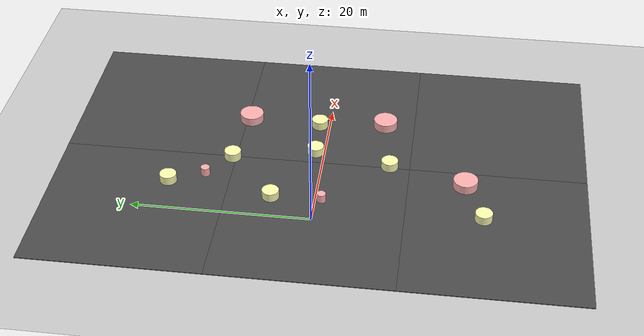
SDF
<sdf version="1.6">
 <world name="default">
  <model name="ground_plane">
   <static>1</static>
   <link name="link">
    <collision name="collision">
     <geometry><plane><normal>0 0 1</normal><size>100 100</size></plane></geometry>
     <surface><friction><ode><mu>100</mu><mu2>50</mu2></ode></friction></surface>
    </collision>
    <visual name="visual">
     <cast_shadows>0</cast_shadows>
     <geometry><plane><normal>0 0 1</normal><size>100 100</size></plane></geometry>
     <material>
      <script><uri>file://media/materials/scripts/gazebo.material</uri><name>Gazebo/Grey</name></script>
     </material>
    </visual>
   </link>
  </model>
  <model name="asphalt_plane">
   <static>1</static>
   <link name="link">
    <collision name="collision"><geometry><box><size>20 20 0.1</size></box></geometry></collision>
    <visual name="visual">
     <cast_shadows>0</cast_shadows>
     <geometry><box><size>20 20 0.1</size></box></geometry>
     <material>
      <script>
       <uri>model://asphalt_plane/materials/scripts</uri>
       <uri>model://asphalt_plane/materials/textures</uri>
       <name>vrc/asphalt</name>
      </script>
     </material>
    </visual>
   </link>
  </model>
  <model name="asphalt_plane_clone_clone">
   <static>1</static>
   <link name="link">
    <collision name="collision"><geometry><box><size>20 20 0.1</size></box></geometry></collision>
    <visual name="visual">
     <cast_shadows>0</cast_shadows>
     <geometry><box><size>20 20 0.1</size></box></geometry>
     <material>
      <script>
       <uri>model://asphalt_plane/materials/scripts</uri>
       <uri>model://asphalt_plane/materials/textures</uri>
       <name>vrc/asphalt</name>
      </script>
     </material>
    </visual>
   </link>
   <pose>20 20 0 0 -0 0</pose>
  </model>
  <model name="asphalt_plane_clone_clone_clone">
   <static>1</static>
   <link name="link">
    <collision name="collision"><geometry><box><size>20 20 0.1</size></box></geometry></collision>
    <visual name="visual">
     <cast_shadows>0</cast_shadows>
     <geometry><box><size>20 20 0.1</size></box></geometry>
     <material>
      <script>
       <uri>model://asphalt_plane/materials/scripts</uri>
       <uri>model://asphalt_plane/materials/textures</uri>
       <name>vrc/asphalt</name>
      </script>
     </material>
    </visual>
   </link>
   <pose>0 20 0 0 -0 0</pose>
  </model>
  <model name="asphalt_plane_clone_clone_clone_1">
   <static>1</static>
   <link name="link">
    <collision name="collision"><geometry><box><size>20 20 0.1</size></box></geometry></collision>
    <visual name="visual">
     <cast_shadows>0</cast_shadows>
     <geometry><box><size>20 20 0.1</size></box></geometry>
     <material>
      <script>
       <uri>model://asphalt_plane/materials/scripts</uri>
       <uri>model://asphalt_plane/materials/textures</uri>
       <name>vrc/asphalt</name>
      </script>
     </material>
    </visual>
   </link>
   <pose>20 0 0 0 -0 0</pose>
  </model>
  <model name="asphalt_plane_clone_clone_clone_2">
   <static>1</static>
   <link name="link">
    <collision name="collision"><geometry><box><size>20 20 0.1</size></box></geometry></collision>
    <visual name="visual">
     <cast_shadows>0</cast_shadows>
     <geometry><box><size>20 20 0.1</size></box></geometry>
     <material>
      <script>
       <uri>model://asphalt_plane/materials/scripts</uri>
       <uri>model://asphalt_plane/materials/textures</uri>
       <name>vrc/asphalt</name>
      </script>
     </material>
    </visual>
   </link>
   <pose>20 -20 0 0 -0 0</pose>
  </model>
  <model name="asphalt_plane_clone_clone_clone_3">
   <static>1</static>
   <link name="link">
    <collision name="collision"><geometry><box><size>20 20 0.1</size></box></geometry></collision>
    <visual name="visual">
     <cast_shadows>0</cast_shadows>
     <geometry><box><size>20 20 0.1</size></box></geometry>
     <material>
      <script>
       <uri>model://asphalt_plane/materials/scripts</uri>
       <uri>model://asphalt_plane/materials/textures</uri>
       <name>vrc/asphalt</name>
      </script>
     </material>
    </visual>
   </link>
   <pose>0 -20 0 0 -0 0</pose>
  </model>
  <model name="LandmarksColoured_1">
   <link name="link_4_clone_0_clone_0">
    <pose>18.101 -6.65934 0 0 -0 0</pose>
    <inertial>
     <mass>7.6137</mass>
     <inertia><ixx>4.2575</ixx><ixy>0</ixy><ixz>0</ixz><iyy>4.2575</iyy><iyz>0</iyz><izz>7.24605</izz></inertia>
    </inertial>
    <visual name="visual">
     <geometry><cylinder><radius>1.37965</radius><length>1</length></cylinder></geometry>
     <material>
      <lighting>1</lighting>
      <script><uri>file://media/materials/scripts/gazebo.material</uri><name>Gazebo/Grey</name></script>
      <ambient>1 0.3 0.3 1</ambient>
      <diffuse>1 0.7 0.7 1</diffuse>
      <specular>1 0.01 0.01 1</specular>
      <emissive>1 0 0 1</emissive>
      <shader type="vertex"><normal_map>__default__</normal_map></shader>
     </material>
    </visual>
    <collision name="collision">
     <geometry><cylinder><radius>1.37965</radius><length>1</length></cylinder></geometry>
     <surface>
      <friction>
       <ode><mu>1</mu><mu2>1</mu2><fdir1>0 0 0</fdir1><slip1>0</slip1><slip2>0</slip2></ode>
       <torsional>
        <coefficient>1</coefficient>
        <patch_radius>0</patch_radius>
        <surface_radius>0</surface_radius>
        <use_patch_radius>1</use_patch_radius>
        <ode><slip>0</slip></ode>
       </torsional>
      </friction>
      <bounce><restitution_coefficient>0</restitution_coefficient><threshold>1e+06</threshold></bounce>
      <contact>
       <collide_without_contact>0</collide_without_contact>
       <collide_without_contact_bitmask>1</collide_without_contact_bitmask>
       <collide_bitmask>1</collide_bitmask>
       <ode>
        <soft_cfm>0</soft_cfm>
        <soft_erp>0.2</soft_erp>
        <kp>1e+13</kp>
        <kd>1</kd>
        <max_vel>0.01</max_vel>
        <min_depth>0</min_depth>
       </ode>
       <bullet>
        <split_impulse>1</split_impulse>
        <split_impulse_penetration_threshold>-0.01</split_impulse_penetration_threshold>
        <soft_cfm>0</soft_cfm>
        <soft_erp>0.2</soft_erp>
        <kp>1e+13</kp>
        <kd>1</kd>
       </bullet>
      </contact>
     </surface>
    </collision>
   </link>
   <link name="link_4_clone_0_clone_1">
    <pose>17.6574 9.38126 0 0 -0 0</pose>
    <inertial>
     <mass>7.6137</mass>
     <inertia><ixx>4.2575</ixx><ixy>0</ixy><ixz>0</ixz><iyy>4.2575</iyy><iyz>0</iyz><izz>7.24605</izz></inertia>
    </inertial>
    <visual name="visual">
     <geometry><cylinder><radius>1.37965</radius><length>1</length></cylinder></geometry>
     <material>
      <lighting>1</lighting>
      <script><uri>file://media/materials/scripts/gazebo.material</uri><name>Gazebo/Grey</name></script>
      <ambient>1 0.3 0.3 1</ambient>
      <diffuse>1 0.7 0.7 1</diffuse>
      <specular>1 0.01 0.01 1</specular>
      <emissive>1 0 0 1</emissive>
      <shader type="vertex"><normal_map>__default__</normal_map></shader>
     </material>
    </visual>
    <collision name="collision">
     <geometry><cylinder><radius>1.37965</radius><length>1</length></cylinder></geometry>
     <surface>
      <friction>
       <ode><mu>1</mu><mu2>1</mu2><fdir1>0 0 0</fdir1><slip1>0</slip1><slip2>0</slip2></ode>
       <torsional>
        <coefficient>1</coefficient>
        <patch_radius>0</patch_radius>
        <surface_radius>0</surface_radius>
        <use_patch_radius>1</use_patch_radius>
        <ode><slip>0</slip></ode>
       </torsional>
      </friction>
      <bounce><restitution_coefficient>0</restitution_coefficient><threshold>1e+06</threshold></bounce>
      <contact>
       <collide_without_contact>0</collide_without_contact>
       <collide_without_contact_bitmask>1</collide_without_contact_bitmask>
       <collide_bitmask>1</collide_bitmask>
       <ode>
        <soft_cfm>0</soft_cfm>
        <soft_erp>0.2</soft_erp>
        <kp>1e+13</kp>
        <kd>1</kd>
        <max_vel>0.01</max_vel>
        <min_depth>0</min_depth>
       </ode>
       <bullet>
        <split_impulse>1</split_impulse>
        <split_impulse_penetration_threshold>-0.01</split_impulse_penetration_threshold>
        <soft_cfm>0</soft_cfm>
        <soft_erp>0.2</soft_erp>
        <kp>1e+13</kp>
        <kd>1</kd>
       </bullet>
      </contact>
     </surface>
    </collision>
   </link>
   <link name="link_4_clone_0_clone_clone_0">
    <pose>7.70314 -16.4099 0 0 -0 0</pose>
    <inertial>
     <mass>7.6137</mass>
     <inertia><ixx>4.2575</ixx><ixy>0</ixy><ixz>0</ixz><iyy>4.2575</iyy><iyz>0</iyz><izz>7.24605</izz></inertia>
    </inertial>
    <visual name="visual">
     <geometry><cylinder><radius>1.37965</radius><length>1</length></cylinder></geometry>
     <material>
      <lighting>1</lighting>
      <script><uri>file://media/materials/scripts/gazebo.material</uri><name>Gazebo/Grey</name></script>
      <ambient>1 0.3 0.3 1</ambient>
      <diffuse>1 0.7 0.7 1</diffuse>
      <specular>1 0.01 0.01 1</specular>
      <emissive>1 0 0 1</emissive>
      <shader type="vertex"><normal_map>__default__</normal_map></shader>
     </material>
    </visual>
    <collision name="collision">
     <geometry><cylinder><radius>1.37965</radius><length>1</length></cylinder></geometry>
     <surface>
      <friction>
       <ode><mu>1</mu><mu2>1</mu2><fdir1>0 0 0</fdir1><slip1>0</slip1><slip2>0</slip2></ode>
       <torsional>
        <coefficient>1</coefficient>
        <patch_radius>0</patch_radius>
        <surface_radius>0</surface_radius>
        <use_patch_radius>1</use_patch_radius>
        <ode><slip>0</slip></ode>
       </torsional>
      </friction>
      <bounce><restitution_coefficient>0</restitution_coefficient><threshold>1e+06</threshold></bounce>
      <contact>
       <collide_without_contact>0</collide_without_contact>
       <collide_without_contact_bitmask>1</collide_without_contact_bitmask>
       <collide_bitmask>1</collide_bitmask>
       <ode>
        <soft_cfm>0</soft_cfm>
        <soft_erp>0.2</soft_erp>
        <kp>1e+13</kp>
        <kd>1</kd>
        <max_vel>0.01</max_vel>
        <min_depth>0</min_depth>
       </ode>
       <bullet>
        <split_impulse>1</split_impulse>
        <split_impulse_penetration_threshold>-0.01</split_impulse_penetration_threshold>
        <soft_cfm>0</soft_cfm>
        <soft_erp>0.2</soft_erp>
        <kp>1e+13</kp>
        <kd>1</kd>
       </bullet>
      </contact>
     </surface>
    </collision>
   </link>
   <link name="link_4_clone_2">
    <pose>3.40156 -0.6744 1e-05 0 -0 0</pose>
    <inertial>
     <mass>1</mass>
     <inertia><ixx>0.145833</ixx><ixy>0</ixy><ixz>0</ixz><iyy>0.145833</iyy><iyz>0</iyz><izz>0.125</izz></inertia>
    </inertial>
    <visual name="visual">
     <geometry><cylinder><radius>0.5</radius><length>1</length></cylinder></geometry>
     <material>
      <lighting>1</lighting>
      <script><uri>file://media/materials/scripts/gazebo.material</uri><name>Gazebo/Grey</name></script>
      <ambient>1 0.3 0.3 1</ambient>
      <diffuse>1 0.7 0.7 1</diffuse>
      <specular>1 0.01 0.01 1</specular>
      <emissive>1 0 0 1</emissive>
      <shader type="vertex"><normal_map>__default__</normal_map></shader>
     </material>
    </visual>
    <collision name="collision">
     <geometry><cylinder><radius>0.5</radius><length>1</length></cylinder></geometry>
     <surface>
      <friction>
       <ode><mu>1</mu><mu2>1</mu2><fdir1>0 0 0</fdir1><slip1>0</slip1><slip2>0</slip2></ode>
       <torsional>
        <coefficient>1</coefficient>
        <patch_radius>0</patch_radius>
        <surface_radius>0</surface_radius>
        <use_patch_radius>1</use_patch_radius>
        <ode><slip>0</slip></ode>
       </torsional>
      </friction>
      <bounce><restitution_coefficient>0</restitution_coefficient><threshold>1e+06</threshold></bounce>
      <contact>
       <collide_without_contact>0</collide_without_contact>
       <collide_without_contact_bitmask>1</collide_without_contact_bitmask>
       <collide_bitmask>1</collide_bitmask>
       <ode>
        <soft_cfm>0</soft_cfm>
        <soft_erp>0.2</soft_erp>
        <kp>1e+13</kp>
        <kd>1</kd>
        <max_vel>0.01</max_vel>
        <min_depth>0</min_depth>
       </ode>
       <bullet>
        <split_impulse>1</split_impulse>
        <split_impulse_penetration_threshold>-0.01</split_impulse_penetration_threshold>
        <soft_cfm>0</soft_cfm>
        <soft_erp>0.2</soft_erp>
        <kp>1e+13</kp>
        <kd>1</kd>
       </bullet>
      </contact>
     </surface>
    </collision>
   </link>
   <link name="link_4_clone_3">
    <pose>6.57429 12.9229 1.5e-05 0 -0 0</pose>
    <inertial>
     <mass>1</mass>
     <inertia><ixx>0.145833</ixx><ixy>0</ixy><ixz>0</ixz><iyy>0.145833</iyy><iyz>0</iyz><izz>0.125</izz></inertia>
    </inertial>
    <visual name="visual">
     <geometry><cylinder><radius>0.5</radius><length>1</length></cylinder></geometry>
     <material>
      <lighting>1</lighting>
      <script><uri>file://media/materials/scripts/gazebo.material</uri><name>Gazebo/Grey</name></script>
      <ambient>1 0.3 0.3 1</ambient>
      <diffuse>1 0.7 0.7 1</diffuse>
      <specular>1 0.01 0.01 1</specular>
      <emissive>1 0 0 1</emissive>
      <shader type="vertex"><normal_map>__default__</normal_map></shader>
     </material>
    </visual>
    <collision name="collision">
     <geometry><cylinder><radius>0.5</radius><length>1</length></cylinder></geometry>
     <surface>
      <friction>
       <ode><mu>1</mu><mu2>1</mu2><fdir1>0 0 0</fdir1><slip1>0</slip1><slip2>0</slip2></ode>
       <torsional>
        <coefficient>1</coefficient>
        <patch_radius>0</patch_radius>
        <surface_radius>0</surface_radius>
        <use_patch_radius>1</use_patch_radius>
        <ode><slip>0</slip></ode>
       </torsional>
      </friction>
      <bounce><restitution_coefficient>0</restitution_coefficient><threshold>1e+06</threshold></bounce>
      <contact>
       <collide_without_contact>0</collide_without_contact>
       <collide_without_contact_bitmask>1</collide_without_contact_bitmask>
       <collide_bitmask>1</collide_bitmask>
       <ode>
        <soft_cfm>0</soft_cfm>
        <soft_erp>0.2</soft_erp>
        <kp>1e+13</kp>
        <kd>1</kd>
        <max_vel>0.01</max_vel>
        <min_depth>0</min_depth>
       </ode>
       <bullet>
        <split_impulse>1</split_impulse>
        <split_impulse_penetration_threshold>-0.01</split_impulse_penetration_threshold>
        <soft_cfm>0</soft_cfm>
        <soft_erp>0.2</soft_erp>
        <kp>1e+13</kp>
        <kd>1</kd>
       </bullet>
      </contact>
     </surface>
    </collision>
   </link>
   <link name="link_4_clone_clone">
    <pose>10.2323 -7.72786 0 0 -0 0</pose>
    <inertial>
     <mass>3.64615</mass>
     <inertia><ixx>1.13475</ixx><ixy>0</ixy><ixz>0</ixz><iyy>1.13475</iyy><iyz>0</iyz><izz>1.6618</izz></inertia>
    </inertial>
    <visual name="visual_1">
     <geometry><cylinder><radius>0.954744</radius><length>1</length></cylinder></geometry>
     <material>
      <lighting>1</lighting>
      <script><uri>file://media/materials/scripts/gazebo.material</uri><name>Gazebo/Grey</name></script>
      <ambient>1 1 0.3 1</ambient>
      <diffuse>1 1 0.7 1</diffuse>
      <specular>1 1 0.01 1</specular>
      <emissive>1 0 0 1</emissive>
      <shader type="vertex"><normal_map>__default__</normal_map></shader>
     </material>
    </visual>
    <visual name="visual">
     <geometry><cylinder><radius>0.954744</radius><length>1</length></cylinder></geometry>
     <material>
      <lighting>1</lighting>
      <script><uri>file://media/materials/scripts/gazebo.material</uri><name>Gazebo/Grey</name></script>
      <ambient>1 1 0.3 1</ambient>
      <diffuse>1 1 0.7 1</diffuse>
      <specular>1 1 0.01 1</specular>
      <emissive>1 1 0 1</emissive>
      <shader type="vertex"><normal_map>__default__</normal_map></shader>
     </material>
    </visual>
    <collision name="collision">
     <geometry><cylinder><radius>0.954744</radius><length>1</length></cylinder></geometry>
     <surface>
      <friction>
       <ode><mu>1</mu><mu2>1</mu2><fdir1>0 0 0</fdir1><slip1>0</slip1><slip2>0</slip2></ode>
       <torsional>
        <coefficient>1</coefficient>
        <patch_radius>0</patch_radius>
        <surface_radius>0</surface_radius>
        <use_patch_radius>1</use_patch_radius>
        <ode><slip>0</slip></ode>
       </torsional>
      </friction>
      <bounce><restitution_coefficient>0</restitution_coefficient><threshold>1e+06</threshold></bounce>
      <contact>
       <collide_without_contact>0</collide_without_contact>
       <collide_without_contact_bitmask>1</collide_without_contact_bitmask>
       <collide_bitmask>1</collide_bitmask>
       <ode>
        <soft_cfm>0</soft_cfm>
        <soft_erp>0.2</soft_erp>
        <kp>1e+13</kp>
        <kd>1</kd>
        <max_vel>0.01</max_vel>
        <min_depth>0</min_depth>
       </ode>
       <bullet>
        <split_impulse>1</split_impulse>
        <split_impulse_penetration_threshold>-0.01</split_impulse_penetration_threshold>
        <soft_cfm>0</soft_cfm>
        <soft_erp>0.2</soft_erp>
        <kp>1e+13</kp>
        <kd>1</kd>
       </bullet>
      </contact>
     </surface>
    </collision>
   </link>
   <link name="link_4_clone_clone_clone_0">
    <pose>9.99975 10.3839 0 0 -0 0</pose>
    <inertial>
     <mass>3.64615</mass>
     <inertia><ixx>1.13475</ixx><ixy>0</ixy><ixz>0</ixz><iyy>1.13475</iyy><iyz>0</iyz><izz>1.6618</izz></inertia>
    </inertial>
    <visual name="visual">
     <geometry><cylinder><radius>0.954744</radius><length>1</length></cylinder></geometry>
     <material>
      <lighting>1</lighting>
      <script><uri>file://media/materials/scripts/gazebo.material</uri><name>Gazebo/Grey</name></script>
      <ambient>1 1 0.3 1</ambient>
      <diffuse>1 1 0.7 1</diffuse>
      <specular>1 1 0.01 1</specular>
      <emissive>1 1 0 1</emissive>
      <shader type="vertex"><normal_map>__default__</normal_map></shader>
     </material>
    </visual>
    <visual name="visual_1">
     <geometry><cylinder><radius>0.954744</radius><length>1</length></cylinder></geometry>
     <material>
      <lighting>1</lighting>
      <script><uri>file://media/materials/scripts/gazebo.material</uri><name>Gazebo/Grey</name></script>
      <ambient>1 1 0.3 1</ambient>
      <diffuse>1 1 0.7 1</diffuse>
      <specular>1 1 0.01 1</specular>
      <emissive>1 0 0 1</emissive>
      <shader type="vertex"><normal_map>__default__</normal_map></shader>
     </material>
    </visual>
    <collision name="collision">
     <geometry><cylinder><radius>0.954744</radius><length>1</length></cylinder></geometry>
     <surface>
      <friction>
       <ode><mu>1</mu><mu2>1</mu2><fdir1>0 0 0</fdir1><slip1>0</slip1><slip2>0</slip2></ode>
       <torsional>
        <coefficient>1</coefficient>
        <patch_radius>0</patch_radius>
        <surface_radius>0</surface_radius>
        <use_patch_radius>1</use_patch_radius>
        <ode><slip>0</slip></ode>
       </torsional>
      </friction>
      <bounce><restitution_coefficient>0</restitution_coefficient><threshold>1e+06</threshold></bounce>
      <contact>
       <collide_without_contact>0</collide_without_contact>
       <collide_without_contact_bitmask>1</collide_without_contact_bitmask>
       <collide_bitmask>1</collide_bitmask>
       <ode>
        <soft_cfm>0</soft_cfm>
        <soft_erp>0.2</soft_erp>
        <kp>1e+13</kp>
        <kd>1</kd>
        <max_vel>0.01</max_vel>
        <min_depth>0</min_depth>
       </ode>
       <bullet>
        <split_impulse>1</split_impulse>
        <split_impulse_penetration_threshold>-0.01</split_impulse_penetration_threshold>
        <soft_cfm>0</soft_cfm>
        <soft_erp>0.2</soft_erp>
        <kp>1e+13</kp>
        <kd>1</kd>
       </bullet>
      </contact>
     </surface>
    </collision>
   </link>
   <link name="link_4_clone_clone_clone_1_clone">
    <pose>4.96725 16.8704 -0 0 -0 0</pose>
    <inertial>
     <mass>3.64615</mass>
     <inertia><ixx>1.13475</ixx><ixy>0</ixy><ixz>0</ixz><iyy>1.13475</iyy><iyz>0</iyz><izz>1.6618</izz></inertia>
    </inertial>
    <visual name="visual">
     <geometry><cylinder><radius>0.954744</radius><length>1</length></cylinder></geometry>
     <material>
      <lighting>1</lighting>
      <script><uri>file://media/materials/scripts/gazebo.material</uri><name>Gazebo/Grey</name></script>
      <ambient>1 1 0.3 1</ambient>
      <diffuse>1 1 0.7 1</diffuse>
      <specular>1 1 0.01 1</specular>
      <emissive>1 1 0 1</emissive>
      <shader type="vertex"><normal_map>__default__</normal_map></shader>
     </material>
    </visual>
    <visual name="visual_1">
     <geometry><cylinder><radius>0.954744</radius><length>1</length></cylinder></geometry>
     <material>
      <lighting>1</lighting>
      <script><uri>file://media/materials/scripts/gazebo.material</uri><name>Gazebo/Grey</name></script>
      <ambient>1 1 0.3 1</ambient>
      <diffuse>1 1 0.7 1</diffuse>
      <specular>1 1 0.01 1</specular>
      <emissive>1 0 0 1</emissive>
      <shader type="vertex"><normal_map>__default__</normal_map></shader>
     </material>
    </visual>
    <collision name="collision">
     <geometry><cylinder><radius>0.954744</radius><length>1</length></cylinder></geometry>
     <surface>
      <friction>
       <ode><mu>1</mu><mu2>1</mu2><fdir1>0 0 0</fdir1><slip1>0</slip1><slip2>0</slip2></ode>
       <torsional>
        <coefficient>1</coefficient>
        <patch_radius>0</patch_radius>
        <surface_radius>0</surface_radius>
        <use_patch_radius>1</use_patch_radius>
        <ode><slip>0</slip></ode>
       </torsional>
      </friction>
      <bounce><restitution_coefficient>0</restitution_coefficient><threshold>1e+06</threshold></bounce>
      <contact>
       <collide_without_contact>0</collide_without_contact>
       <collide_without_contact_bitmask>1</collide_without_contact_bitmask>
       <collide_bitmask>1</collide_bitmask>
       <ode>
        <soft_cfm>0</soft_cfm>
        <soft_erp>0.2</soft_erp>
        <kp>1e+13</kp>
        <kd>1</kd>
        <max_vel>0.01</max_vel>
        <min_depth>0</min_depth>
       </ode>
       <bullet>
        <split_impulse>1</split_impulse>
        <split_impulse_penetration_threshold>-0.01</split_impulse_penetration_threshold>
        <soft_cfm>0</soft_cfm>
        <soft_erp>0.2</soft_erp>
        <kp>1e+13</kp>
        <kd>1</kd>
       </bullet>
      </contact>
     </surface>
    </collision>
   </link>
   <link name="link_4_clone_clone_clone_1_clone_0">
    <pose>17.274 1.11495 0 0 -0 0</pose>
    <inertial>
     <mass>3.64615</mass>
     <inertia><ixx>1.13475</ixx><ixy>0</ixy><ixz>0</ixz><iyy>1.13475</iyy><iyz>0</iyz><izz>1.6618</izz></inertia>
    </inertial>
    <visual name="visual">
     <geometry><cylinder><radius>0.954744</radius><length>1</length></cylinder></geometry>
     <material>
      <lighting>1</lighting>
      <script><uri>file://media/materials/scripts/gazebo.material</uri><name>Gazebo/Grey</name></script>
      <ambient>1 1 0.3 1</ambient>
      <diffuse>1 1 0.7 1</diffuse>
      <specular>1 1 0.01 1</specular>
      <emissive>1 1 0 1</emissive>
      <shader type="vertex"><normal_map>__default__</normal_map></shader>
     </material>
    </visual>
    <visual name="visual_1">
     <geometry><cylinder><radius>0.954744</radius><length>1</length></cylinder></geometry>
     <material>
      <lighting>1</lighting>
      <script><uri>file://media/materials/scripts/gazebo.material</uri><name>Gazebo/Grey</name></script>
      <ambient>1 1 0.3 1</ambient>
      <diffuse>1 1 0.7 1</diffuse>
      <specular>1 1 0.01 1</specular>
      <emissive>1 0 0 1</emissive>
      <shader type="vertex"><normal_map>__default__</normal_map></shader>
     </material>
    </visual>
    <collision name="collision">
     <geometry><cylinder><radius>0.954744</radius><length>1</length></cylinder></geometry>
     <surface>
      <friction>
       <ode><mu>1</mu><mu2>1</mu2><fdir1>0 0 0</fdir1><slip1>0</slip1><slip2>0</slip2></ode>
       <torsional>
        <coefficient>1</coefficient>
        <patch_radius>0</patch_radius>
        <surface_radius>0</surface_radius>
        <use_patch_radius>1</use_patch_radius>
        <ode><slip>0</slip></ode>
       </torsional>
      </friction>
      <bounce><restitution_coefficient>0</restitution_coefficient><threshold>1e+06</threshold></bounce>
      <contact>
       <collide_without_contact>0</collide_without_contact>
       <collide_without_contact_bitmask>1</collide_without_contact_bitmask>
       <collide_bitmask>1</collide_bitmask>
       <ode>
        <soft_cfm>0</soft_cfm>
        <soft_erp>0.2</soft_erp>
        <kp>1e+13</kp>
        <kd>1</kd>
        <max_vel>0.01</max_vel>
        <min_depth>0</min_depth>
       </ode>
       <bullet>
        <split_impulse>1</split_impulse>
        <split_impulse_penetration_threshold>-0.01</split_impulse_penetration_threshold>
        <soft_cfm>0</soft_cfm>
        <soft_erp>0.2</soft_erp>
        <kp>1e+13</kp>
        <kd>1</kd>
       </bullet>
      </contact>
     </surface>
    </collision>
   </link>
   <link name="link_4_clone_clone_clone_1_clone_0_clone_clone">
    <pose>3.40722 5 -0 0 -0 0</pose>
    <inertial>
     <mass>3.64615</mass>
     <inertia><ixx>1.13475</ixx><ixy>0</ixy><ixz>0</ixz><iyy>1.13475</iyy><iyz>0</iyz><izz>1.6618</izz></inertia>
    </inertial>
    <visual name="visual_9">
     <geometry><cylinder><radius>0.954744</radius><length>1</length></cylinder></geometry>
     <material>
      <lighting>1</lighting>
      <script><uri>file://media/materials/scripts/gazebo.material</uri><name>Gazebo/Grey</name></script>
      <ambient>1 1 0.3 1</ambient>
      <diffuse>1 1 0.7 1</diffuse>
      <specular>1 1 0.01 1</specular>
      <emissive>1 1 0 1</emissive>
      <shader type="vertex"><normal_map>__default__</normal_map></shader>
     </material>
    </visual>
    <visual name="visual_4">
     <geometry><cylinder><radius>0.954744</radius><length>1</length></cylinder></geometry>
     <material>
      <lighting>1</lighting>
      <script><uri>file://media/materials/scripts/gazebo.material</uri><name>Gazebo/Grey</name></script>
      <ambient>1 1 0.3 1</ambient>
      <diffuse>1 1 0.7 1</diffuse>
      <specular>1 1 0.01 1</specular>
      <emissive>1 1 0 1</emissive>
      <shader type="vertex"><normal_map>__default__</normal_map></shader>
     </material>
    </visual>
    <visual name="visual_11">
     <geometry><cylinder><radius>0.954744</radius><length>1</length></cylinder></geometry>
     <material>
      <lighting>1</lighting>
      <script><uri>file://media/materials/scripts/gazebo.material</uri><name>Gazebo/Grey</name></script>
      <ambient>1 1 0.3 1</ambient>
      <diffuse>1 1 0.7 1</diffuse>
      <specular>1 1 0.01 1</specular>
      <emissive>1 1 0 1</emissive>
      <shader type="vertex"><normal_map>__default__</normal_map></shader>
     </material>
    </visual>
    <visual name="visual_12">
     <geometry><cylinder><radius>0.954744</radius><length>1</length></cylinder></geometry>
     <material>
      <lighting>1</lighting>
      <script><uri>file://media/materials/scripts/gazebo.material</uri><name>Gazebo/Grey</name></script>
      <ambient>1 1 0.3 1</ambient>
      <diffuse>1 1 0.7 1</diffuse>
      <specular>1 1 0.01 1</specular>
      <emissive>1 1 0 1</emissive>
      <shader type="vertex"><normal_map>__default__</normal_map></shader>
     </material>
    </visual>
    <visual name="visual_5">
     <geometry><cylinder><radius>0.954744</radius><length>1</length></cylinder></geometry>
     <material>
      <lighting>1</lighting>
      <script><uri>file://media/materials/scripts/gazebo.material</uri><name>Gazebo/Grey</name></script>
      <ambient>1 1 0.3 1</ambient>
      <diffuse>1 1 0.7 1</diffuse>
      <specular>1 1 0.01 1</specular>
      <emissive>1 1 0 1</emissive>
      <shader type="vertex"><normal_map>__default__</normal_map></shader>
     </material>
    </visual>
    <visual name="visual_7">
     <geometry><cylinder><radius>0.954744</radius><length>1</length></cylinder></geometry>
     <material>
      <lighting>1</lighting>
      <script><uri>file://media/materials/scripts/gazebo.material</uri><name>Gazebo/Grey</name></script>
      <ambient>1 1 0.3 1</ambient>
      <diffuse>1 1 0.7 1</diffuse>
      <specular>1 1 0.01 1</specular>
      <emissive>1 1 0 1</emissive>
      <shader type="vertex"><normal_map>__default__</normal_map></shader>
     </material>
    </visual>
    <visual name="visual_8">
     <geometry><cylinder><radius>0.954744</radius><length>1</length></cylinder></geometry>
     <material>
      <lighting>1</lighting>
      <script><uri>file://media/materials/scripts/gazebo.material</uri><name>Gazebo/Grey</name></script>
      <ambient>1 1 0.3 1</ambient>
      <diffuse>1 1 0.7 1</diffuse>
      <specular>1 1 0.01 1</specular>
      <emissive>1 1 0 1</emissive>
      <shader type="vertex"><normal_map>__default__</normal_map></shader>
     </material>
    </visual>
    <visual name="visual_13">
     <geometry><cylinder><radius>0.954744</radius><length>1</length></cylinder></geometry>
     <material>
      <lighting>1</lighting>
      <script><uri>file://media/materials/scripts/gazebo.material</uri><name>Gazebo/Grey</name></script>
      <ambient>1 1 0.3 1</ambient>
      <diffuse>1 1 0.7 1</diffuse>
      <specular>1 1 0.01 1</specular>
      <emissive>1 1 0 1</emissive>
      <shader type="vertex"><normal_map>__default__</normal_map></shader>
     </material>
    </visual>
    <visual name="visual_2">
     <geometry><cylinder><radius>0.954744</radius><length>1</length></cylinder></geometry>
     <material>
      <lighting>1</lighting>
      <script><uri>file://media/materials/scripts/gazebo.material</uri><name>Gazebo/Grey</name></script>
      <ambient>1 1 0.3 1</ambient>
      <diffuse>1 1 0.7 1</diffuse>
      <specular>1 1 0.01 1</specular>
      <emissive>1 1 0 1</emissive>
      <shader type="vertex"><normal_map>__default__</normal_map></shader>
     </material>
    </visual>
    <visual name="visual">
     <geometry><cylinder><radius>0.954744</radius><length>1</length></cylinder></geometry>
     <material>
      <lighting>1</lighting>
      <script><uri>file://media/materials/scripts/gazebo.material</uri><name>Gazebo/Grey</name></script>
      <ambient>1 1 0.3 1</ambient>
      <diffuse>1 1 0.7 1</diffuse>
      <specular>1 1 0.01 1</specular>
      <emissive>1 1 0 1</emissive>
      <shader type="vertex"><normal_map>__default__</normal_map></shader>
     </material>
    </visual>
    <visual name="visual_3">
     <geometry><cylinder><radius>0.954744</radius><length>1</length></cylinder></geometry>
     <material>
      <lighting>1</lighting>
      <script><uri>file://media/materials/scripts/gazebo.material</uri><name>Gazebo/Grey</name></script>
      <ambient>1 1 0.3 1</ambient>
      <diffuse>1 1 0.7 1</diffuse>
      <specular>1 1 0.01 1</specular>
      <emissive>1 1 0 1</emissive>
      <shader type="vertex"><normal_map>__default__</normal_map></shader>
     </material>
    </visual>
    <visual name="visual_10">
     <geometry><cylinder><radius>0.954744</radius><length>1</length></cylinder></geometry>
     <material>
      <lighting>1</lighting>
      <script><uri>file://media/materials/scripts/gazebo.material</uri><name>Gazebo/Grey</name></script>
      <ambient>1 1 0.3 1</ambient>
      <diffuse>1 1 0.7 1</diffuse>
      <specular>1 1 0.01 1</specular>
      <emissive>1 1 0 1</emissive>
      <shader type="vertex"><normal_map>__default__</normal_map></shader>
     </material>
    </visual>
    <visual name="visual_14">
     <geometry><cylinder><radius>0.954744</radius><length>1</length></cylinder></geometry>
     <material>
      <lighting>1</lighting>
      <script><uri>file://media/materials/scripts/gazebo.material</uri><name>Gazebo/Grey</name></script>
      <ambient>1 1 0.3 1</ambient>
      <diffuse>1 1 0.7 1</diffuse>
      <specular>1 1 0.01 1</specular>
      <emissive>1 1 0 1</emissive>
      <shader type="vertex"><normal_map>__default__</normal_map></shader>
     </material>
    </visual>
    <visual name="visual_6">
     <geometry><cylinder><radius>0.954744</radius><length>1</length></cylinder></geometry>
     <material>
      <lighting>1</lighting>
      <script><uri>file://media/materials/scripts/gazebo.material</uri><name>Gazebo/Grey</name></script>
      <ambient>1 1 0.3 1</ambient>
      <diffuse>1 1 0.7 1</diffuse>
      <specular>1 1 0.01 1</specular>
      <emissive>1 1 0 1</emissive>
      <shader type="vertex"><normal_map>__default__</normal_map></shader>
     </material>
    </visual>
    <visual name="visual_1">
     <geometry><cylinder><radius>0.954744</radius><length>1</length></cylinder></geometry>
     <material>
      <lighting>1</lighting>
      <script><uri>file://media/materials/scripts/gazebo.material</uri><name>Gazebo/Grey</name></script>
      <ambient>1 0 0 1</ambient>
      <diffuse>1 0 0 1</diffuse>
      <specular>1 0 0 1</specular>
      <emissive>1 0 0 1</emissive>
      <shader type="vertex"><normal_map>__default__</normal_map></shader>
     </material>
    </visual>
    <collision name="collision">
     <geometry><cylinder><radius>0.954744</radius><length>1</length></cylinder></geometry>
     <surface>
      <friction>
       <ode><mu>1</mu><mu2>1</mu2><fdir1>0 0 0</fdir1><slip1>0</slip1><slip2>0</slip2></ode>
       <torsional>
        <coefficient>1</coefficient>
        <patch_radius>0</patch_radius>
        <surface_radius>0</surface_radius>
        <use_patch_radius>1</use_patch_radius>
        <ode><slip>0</slip></ode>
       </torsional>
      </friction>
      <bounce><restitution_coefficient>0</restitution_coefficient><threshold>1e+06</threshold></bounce>
      <contact>
       <collide_without_contact>0</collide_without_contact>
       <collide_without_contact_bitmask>1</collide_without_contact_bitmask>
       <collide_bitmask>1</collide_bitmask>
       <ode>
        <soft_cfm>0</soft_cfm>
        <soft_erp>0.2</soft_erp>
        <kp>1e+13</kp>
        <kd>1</kd>
        <max_vel>0.01</max_vel>
        <min_depth>0</min_depth>
       </ode>
       <bullet>
        <split_impulse>1</split_impulse>
        <split_impulse_penetration_threshold>-0.01</split_impulse_penetration_threshold>
        <soft_cfm>0</soft_cfm>
        <soft_erp>0.2</soft_erp>
        <kp>1e+13</kp>
        <kd>1</kd>
       </bullet>
      </contact>
     </surface>
    </collision>
   </link>
   <link name="link_4_clone_clone_clone_1_clone_0_clone_clone_0_clone">
    <pose>12 1 0 0 -0 0</pose>
    <inertial>
     <mass>3.64615</mass>
     <inertia><ixx>1.13475</ixx><ixy>0</ixy><ixz>0</ixz><iyy>1.13475</iyy><iyz>0</iyz><izz>1.6618</izz></inertia>
    </inertial>
    <visual name="visual">
     <geometry><cylinder><radius>0.954744</radius><length>1</length></cylinder></geometry>
     <material>
      <lighting>1</lighting>
      <script><uri>file://media/materials/scripts/gazebo.material</uri><name>Gazebo/Grey</name></script>
      <ambient>1 1 0.3 1</ambient>
      <diffuse>1 1 0.7 1</diffuse>
      <specular>1 1 0.01 1</specular>
      <emissive>1 1 0 1</emissive>
      <shader type="vertex"><normal_map>__default__</normal_map></shader>
     </material>
    </visual>
    <visual name="visual_5">
     <geometry><cylinder><radius>0.954744</radius><length>1</length></cylinder></geometry>
     <material>
      <lighting>1</lighting>
      <script><uri>file://media/materials/scripts/gazebo.material</uri><name>Gazebo/Grey</name></script>
      <ambient>1 1 0.3 1</ambient>
      <diffuse>1 1 0.7 1</diffuse>
      <specular>1 1 0.01 1</specular>
      <emissive>1 1 0 1</emissive>
      <shader type="vertex"><normal_map>__default__</normal_map></shader>
     </material>
    </visual>
    <visual name="visual_2">
     <geometry><cylinder><radius>0.954744</radius><length>1</length></cylinder></geometry>
     <material>
      <lighting>1</lighting>
      <script><uri>file://media/materials/scripts/gazebo.material</uri><name>Gazebo/Grey</name></script>
      <ambient>1 1 0.3 1</ambient>
      <diffuse>1 1 0.7 1</diffuse>
      <specular>1 1 0.01 1</specular>
      <emissive>1 1 0 1</emissive>
      <shader type="vertex"><normal_map>__default__</normal_map></shader>
     </material>
    </visual>
    <visual name="visual_1">
     <geometry><cylinder><radius>0.954744</radius><length>1</length></cylinder></geometry>
     <material>
      <lighting>1</lighting>
      <script><uri>file://media/materials/scripts/gazebo.material</uri><name>Gazebo/Grey</name></script>
      <ambient>1 0 0 1</ambient>
      <diffuse>1 0 0 1</diffuse>
      <specular>1 0 0 1</specular>
      <emissive>1 0 0 1</emissive>
      <shader type="vertex"><normal_map>__default__</normal_map></shader>
     </material>
    </visual>
    <visual name="visual_4">
     <geometry><cylinder><radius>0.954744</radius><length>1</length></cylinder></geometry>
     <material>
      <lighting>1</lighting>
      <script><uri>file://media/materials/scripts/gazebo.material</uri><name>Gazebo/Grey</name></script>
      <ambient>1 1 0.3 1</ambient>
      <diffuse>1 1 0.7 1</diffuse>
      <specular>1 1 0.01 1</specular>
      <emissive>1 1 0 1</emissive>
      <shader type="vertex"><normal_map>__default__</normal_map></shader>
     </material>
    </visual>
    <visual name="visual_6">
     <geometry><cylinder><radius>0.954744</radius><length>1</length></cylinder></geometry>
     <material>
      <lighting>1</lighting>
      <script><uri>file://media/materials/scripts/gazebo.material</uri><name>Gazebo/Grey</name></script>
      <ambient>1 1 0.3 1</ambient>
      <diffuse>1 1 0.7 1</diffuse>
      <specular>1 1 0.01 1</specular>
      <emissive>1 1 0 1</emissive>
      <shader type="vertex"><normal_map>__default__</normal_map></shader>
     </material>
    </visual>
    <visual name="visual_3">
     <geometry><cylinder><radius>0.954744</radius><length>1</length></cylinder></geometry>
     <material>
      <lighting>1</lighting>
      <script><uri>file://media/materials/scripts/gazebo.material</uri><name>Gazebo/Grey</name></script>
      <ambient>1 1 0.3 1</ambient>
      <diffuse>1 1 0.7 1</diffuse>
      <specular>1 1 0.01 1</specular>
      <emissive>1 1 0 1</emissive>
      <shader type="vertex"><normal_map>__default__</normal_map></shader>
     </material>
    </visual>
    <visual name="visual_7">
     <geometry><cylinder><radius>0.954744</radius><length>1</length></cylinder></geometry>
     <material>
      <lighting>1</lighting>
      <script><uri>file://media/materials/scripts/gazebo.material</uri><name>Gazebo/Grey</name></script>
      <ambient>1 1 0.3 1</ambient>
      <diffuse>1 1 0.7 1</diffuse>
      <specular>1 1 0.01 1</specular>
      <emissive>1 1 0 1</emissive>
      <shader type="vertex"><normal_map>__default__</normal_map></shader>
     </material>
    </visual>
    <visual name="visual_9">
     <geometry><cylinder><radius>0.954744</radius><length>1</length></cylinder></geometry>
     <material>
      <lighting>1</lighting>
      <script><uri>file://media/materials/scripts/gazebo.material</uri><name>Gazebo/Grey</name></script>
      <ambient>1 1 0.3 1</ambient>
      <diffuse>1 1 0.7 1</diffuse>
      <specular>1 1 0.01 1</specular>
      <emissive>1 1 0 1</emissive>
      <shader type="vertex"><normal_map>__default__</normal_map></shader>
     </material>
    </visual>
    <visual name="visual_8">
     <geometry><cylinder><radius>0.954744</radius><length>1</length></cylinder></geometry>
     <material>
      <lighting>1</lighting>
      <script><uri>file://media/materials/scripts/gazebo.material</uri><name>Gazebo/Grey</name></script>
      <ambient>1 1 0.3 1</ambient>
      <diffuse>1 1 0.7 1</diffuse>
      <specular>1 1 0.01 1</specular>
      <emissive>1 1 0 1</emissive>
      <shader type="vertex"><normal_map>__default__</normal_map></shader>
     </material>
    </visual>
    <visual name="visual_10">
     <geometry><cylinder><radius>0.954744</radius><length>1</length></cylinder></geometry>
     <material>
      <lighting>1</lighting>
      <script><uri>file://media/materials/scripts/gazebo.material</uri><name>Gazebo/Grey</name></script>
      <ambient>1 1 0.3 1</ambient>
      <diffuse>1 1 0.7 1</diffuse>
      <specular>1 1 0.01 1</specular>
      <emissive>1 1 0 1</emissive>
      <shader type="vertex"><normal_map>__default__</normal_map></shader>
     </material>
    </visual>
    <visual name="visual_11">
     <geometry><cylinder><radius>0.954744</radius><length>1</length></cylinder></geometry>
     <material>
      <lighting>1</lighting>
      <script><uri>file://media/materials/scripts/gazebo.material</uri><name>Gazebo/Grey</name></script>
      <ambient>1 1 0.3 1</ambient>
      <diffuse>1 1 0.7 1</diffuse>
      <specular>1 1 0.01 1</specular>
      <emissive>1 1 0 1</emissive>
      <shader type="vertex"><normal_map>__default__</normal_map></shader>
     </material>
    </visual>
    <visual name="visual_12">
     <geometry><cylinder><radius>0.954744</radius><length>1</length></cylinder></geometry>
     <material>
      <lighting>1</lighting>
      <script><uri>file://media/materials/scripts/gazebo.material</uri><name>Gazebo/Grey</name></script>
      <ambient>1 1 0.3 1</ambient>
      <diffuse>1 1 0.7 1</diffuse>
      <specular>1 1 0.01 1</specular>
      <emissive>1 1 0 1</emissive>
      <shader type="vertex"><normal_map>__default__</normal_map></shader>
     </material>
    </visual>
    <visual name="visual_13">
     <geometry><cylinder><radius>0.954744</radius><length>1</length></cylinder></geometry>
     <material>
      <lighting>1</lighting>
      <script><uri>file://media/materials/scripts/gazebo.material</uri><name>Gazebo/Grey</name></script>
      <ambient>1 1 0.3 1</ambient>
      <diffuse>1 1 0.7 1</diffuse>
      <specular>1 1 0.01 1</specular>
      <emissive>1 1 0 1</emissive>
      <shader type="vertex"><normal_map>__default__</normal_map></shader>
     </material>
    </visual>
    <visual name="visual_14">
     <geometry><cylinder><radius>0.954744</radius><length>1</length></cylinder></geometry>
     <material>
      <lighting>1</lighting>
      <script><uri>file://media/materials/scripts/gazebo.material</uri><name>Gazebo/Grey</name></script>
      <ambient>1 1 0.3 1</ambient>
      <diffuse>1 1 0.7 1</diffuse>
      <specular>1 1 0.01 1</specular>
      <emissive>1 1 0 1</emissive>
      <shader type="vertex"><normal_map>__default__</normal_map></shader>
     </material>
    </visual>
    <collision name="collision">
     <geometry><cylinder><radius>0.954744</radius><length>1</length></cylinder></geometry>
     <surface>
      <friction>
       <ode><mu>1</mu><mu2>1</mu2><fdir1>0 0 0</fdir1><slip1>0</slip1><slip2>0</slip2></ode>
       <torsional>
        <coefficient>1</coefficient>
        <patch_radius>0</patch_radius>
        <surface_radius>0</surface_radius>
        <use_patch_radius>1</use_patch_radius>
        <ode><slip>0</slip></ode>
       </torsional>
      </friction>
      <bounce><restitution_coefficient>0</restitution_coefficient><threshold>1e+06</threshold></bounce>
      <contact>
       <collide_without_contact>0</collide_without_contact>
       <collide_without_contact_bitmask>1</collide_without_contact_bitmask>
       <collide_bitmask>1</collide_bitmask>
       <ode>
        <soft_cfm>0</soft_cfm>
        <soft_erp>0.2</soft_erp>
        <kp>1e+13</kp>
        <kd>1</kd>
        <max_vel>0.01</max_vel>
        <min_depth>0</min_depth>
       </ode>
       <bullet>
        <split_impulse>1</split_impulse>
        <split_impulse_penetration_threshold>-0.01</split_impulse_penetration_threshold>
        <soft_cfm>0</soft_cfm>
        <soft_erp>0.2</soft_erp>
        <kp>1e+13</kp>
        <kd>1</kd>
       </bullet>
      </contact>
     </surface>
    </collision>
   </link>
   <link name="link_4_clone_clone_clone_2">
    <pose>2.18923 -18.5128 0 0 -0 0</pose>
    <inertial>
     <mass>3.64615</mass>
     <inertia><ixx>1.13475</ixx><ixy>0</ixy><ixz>0</ixz><iyy>1.13475</iyy><iyz>0</iyz><izz>1.6618</izz></inertia>
    </inertial>
    <visual name="visual">
     <geometry><cylinder><radius>0.954744</radius><length>1</length></cylinder></geometry>
     <material>
      <lighting>1</lighting>
      <script><uri>file://media/materials/scripts/gazebo.material</uri><name>Gazebo/Grey</name></script>
      <ambient>1 1 0.3 1</ambient>
      <diffuse>1 1 0.7 1</diffuse>
      <specular>1 1 0.01 1</specular>
      <emissive>1 1 0 1</emissive>
      <shader type="vertex"><normal_map>__default__</normal_map></shader>
     </material>
    </visual>
    <visual name="visual_1">
     <geometry><cylinder><radius>0.954744</radius><length>1</length></cylinder></geometry>
     <material>
      <lighting>1</lighting>
      <script><uri>file://media/materials/scripts/gazebo.material</uri><name>Gazebo/Grey</name></script>
      <ambient>1 1 0.3 1</ambient>
      <diffuse>1 1 0.7 1</diffuse>
      <specular>1 1 0.01 1</specular>
      <emissive>1 0 0 1</emissive>
      <shader type="vertex"><normal_map>__default__</normal_map></shader>
     </material>
    </visual>
    <collision name="collision">
     <geometry><cylinder><radius>0.954744</radius><length>1</length></cylinder></geometry>
     <surface>
      <friction>
       <ode><mu>1</mu><mu2>1</mu2><fdir1>0 0 0</fdir1><slip1>0</slip1><slip2>0</slip2></ode>
       <torsional>
        <coefficient>1</coefficient>
        <patch_radius>0</patch_radius>
        <surface_radius>0</surface_radius>
        <use_patch_radius>1</use_patch_radius>
        <ode><slip>0</slip></ode>
       </torsional>
      </friction>
      <bounce><restitution_coefficient>0</restitution_coefficient><threshold>1e+06</threshold></bounce>
      <contact>
       <collide_without_contact>0</collide_without_contact>
       <collide_without_contact_bitmask>1</collide_without_contact_bitmask>
       <collide_bitmask>1</collide_bitmask>
       <ode>
        <soft_cfm>0</soft_cfm>
        <soft_erp>0.2</soft_erp>
        <kp>1e+13</kp>
        <kd>1</kd>
        <max_vel>0.01</max_vel>
        <min_depth>0</min_depth>
       </ode>
       <bullet>
        <split_impulse>1</split_impulse>
        <split_impulse_penetration_threshold>-0.01</split_impulse_penetration_threshold>
        <soft_cfm>0</soft_cfm>
        <soft_erp>0.2</soft_erp>
        <kp>1e+13</kp>
        <kd>1</kd>
       </bullet>
      </contact>
     </surface>
    </collision>
   </link>
   <static>0</static>
   <pose>-0.146122 -0.075574 0.550081 5e-06 2e-06 0.009082</pose>
  </model>
 </world>
</sdf>
